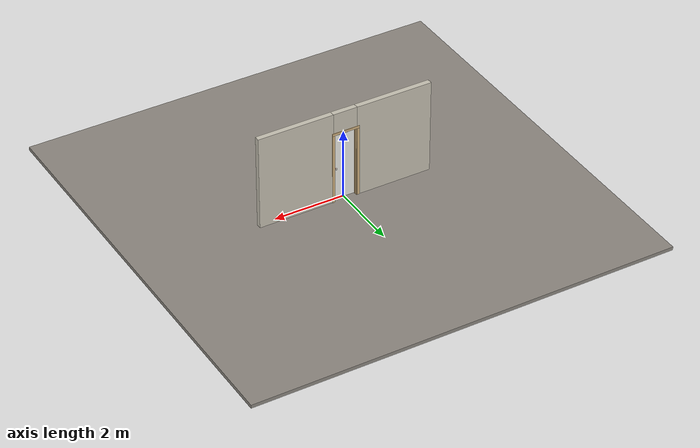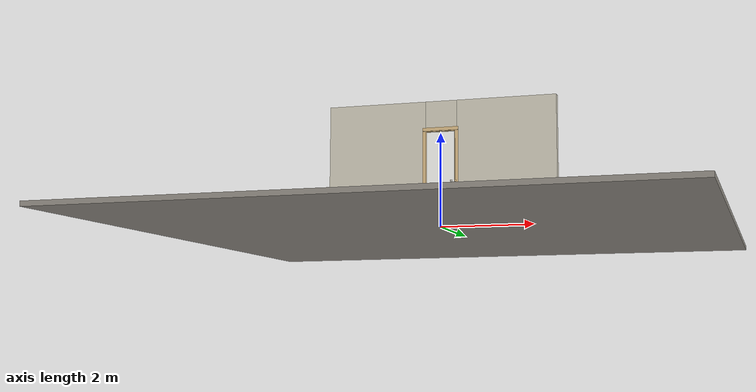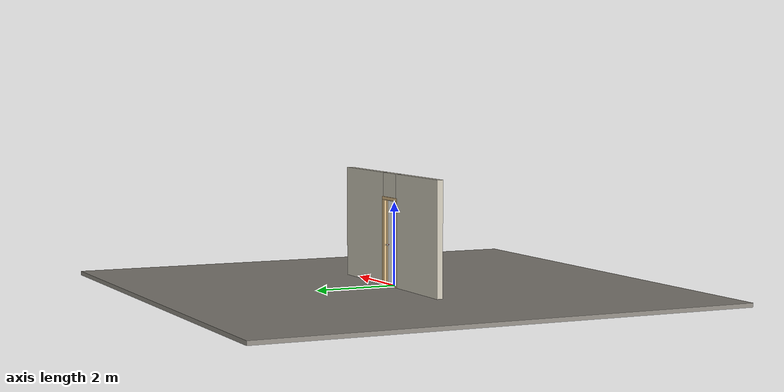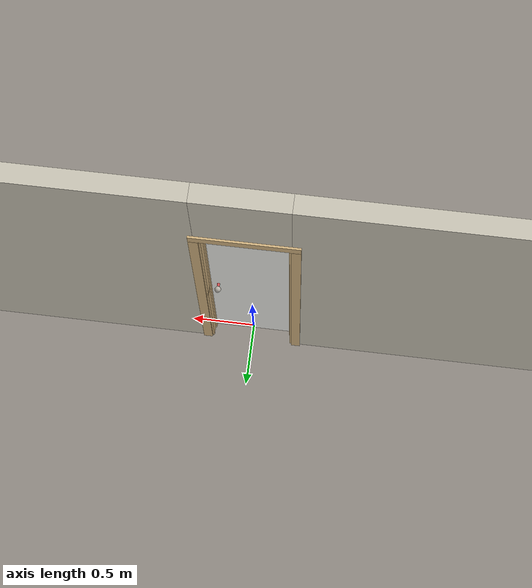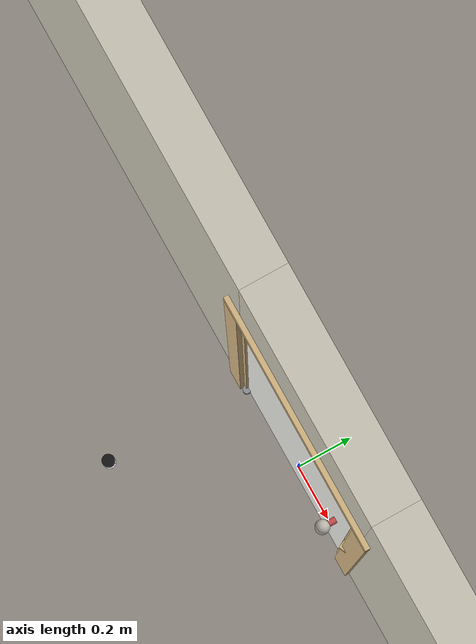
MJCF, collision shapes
<?xml version="1.0" ?>
<mujoco model="db0156_swing_single_full">
  <compiler angle="radian" meshdir="../../hardware" texturedir="../../textures" autolimits="true" inertiafromgeom="false"/>
  <option timestep="0.002" integrator="implicitfast" cone="elliptic" impratio="10" noslip_iterations="3">
    <flag multiccd="enable"/>
  </option>
  <size memory="16M"/>
  <default>
    <geom condim="4" solref="0.005 1" solimp="0.95 0.99 0.001"/>
    <joint solreflimit="0.005 1" solimplimit="0.95 0.99 0.001"/>
    <tendon solreflimit="0.005 1"/>
    <equality solref="0.002 1"/>
  </default>
  <visual>
    <headlight ambient="0.4 0.4 0.4" diffuse="0.7 0.7 0.7" specular="0.2 0.2 0.2"/>
    <quality shadowsize="4096"/>
    <map znear="0.01" zfar="60"/>
  </visual>
  <asset>
    <mesh name="hinge_7678ceaa91" file="hinge_7678ceaa91.obj"/>
    <mesh name="hinge_jamb_24fdb06e8a" file="hinge_jamb_24fdb06e8a.obj"/>
    <mesh name="knob_248d825e64" file="knob_248d825e64.obj"/>
    <mesh name="knob_d1888f6f03" file="knob_d1888f6f03.obj"/>
    <material name="mat_floor" rgba="0.55 0.53 0.5 1" specular="0.2" shininess="0.15" reflectance="0"/>
    <material name="mat_wall" rgba="0.78 0.76 0.7 1" specular="0.2" shininess="0.1" reflectance="0"/>
    <material name="mat_hinge" rgba="0.55 0.56 0.58 1" specular="0.8" shininess="0.55" reflectance="0.4"/>
    <material name="mat_leaf" rgba="0.93 0.93 0.91 1" specular="0.2" shininess="0.41" reflectance="0"/>
    <material name="mat_leaf_louver" rgba="0.79 0.79 0.773 1" specular="0.2" shininess="0.4" reflectance="0"/>
    <material name="mat_op_nickel_satin" rgba="0.72 0.7 0.66 1" specular="0.8" shininess="0.65" reflectance="0.4"/>
    <material name="mat_trim" rgba="0.85 0.66 0.3 1" specular="0.8" shininess="0.75" reflectance="0.4"/>
    <material name="mat_bolt" rgba="0.85 0.66 0.3 1" specular="0.8" shininess="0.75" reflectance="0.4"/>
    <material name="mat_frame" rgba="0.82 0.7 0.5 1" specular="0.2" shininess="0.45" reflectance="0"/>
    <material name="mat_bumper_stop" rgba="0.08 0.08 0.08 1" specular="0.2" shininess="0.1" reflectance="0"/>
    <material name="mat_stop_base" rgba="0.9 0.9 0.92 1" specular="0.8" shininess="0.9" reflectance="0.4"/>
    <texture name="skybox" type="skybox" builtin="gradient" rgb1="0.6 0.7 0.85" rgb2="0.9 0.92 0.95" width="256" height="256"/>
  </asset>
  <worldbody>
    <light name="sun" pos="1.5 -2.5 4" dir="-0.3 0.5 -0.8" directional="true" diffuse="0.8 0.8 0.8" specular="0.3 0.3 0.3" castshadow="true"/>
    <light name="fill" pos="-1.5 2.5 3" dir="0.3 -0.5 -0.7" directional="true" diffuse="0.35 0.35 0.4" castshadow="false"/>
    <camera name="robot_view" pos="0 -2.496687 1.734312" xyaxes="1 0 0 0 0.26963 0.962964" fovy="52"/>
    <camera name="far_view" pos="0 2.587687 1.734312" xyaxes="-1 0 0 0 -0.26963 0.962964" fovy="52"/>
    <camera name="iso" pos="1.932062 -2.089938 2.141063" xyaxes="0.741536 0.670913 0 -0.242917 0.268487 0.932151" fovy="46"/>
    <camera name="detail_handle" pos="0.424 -0.8665 1.245" xyaxes="0.97561 0.219512 0 -0.070934 0.315262 0.94635" fovy="38"/>
    <geom name="floor" type="box" size="6 6 0.05" pos="0 0 -0.05" material="mat_floor" group="0" contype="1" conaffinity="1" friction="0.8 0.005 0.0001" density="2400"/>
    <geom name="wall_left" type="box" size="1.086 0.0725 1.35" pos="-1.414 0.0455 1.35" material="mat_wall" group="0" contype="1" conaffinity="1" friction="0.6 0.005 0.0001" density="800"/>
    <geom name="wall_right" type="box" size="1.071 0.0725 1.35" pos="1.429 0.0455 1.35" material="mat_wall" group="0" contype="1" conaffinity="1" friction="0.6 0.005 0.0001" density="800"/>
    <geom name="wall_header" type="box" size="0.343 0.0725 0.303" pos="0.015 0.0455 2.397" material="mat_wall" group="0" contype="1" conaffinity="1" friction="0.6 0.005 0.0001" density="800"/>
    <geom name="hinge_0_jamb" type="mesh" mesh="hinge_jamb_24fdb06e8a" pos="-0.306 -0.027 0.259" material="mat_hinge" group="1" contype="0" conaffinity="0" density="7850"/>
    <geom name="hinge_1_jamb" type="mesh" mesh="hinge_jamb_24fdb06e8a" pos="-0.306 -0.027 1.0198" material="mat_hinge" group="1" contype="0" conaffinity="0" density="7850"/>
    <geom name="hinge_2_jamb" type="mesh" mesh="hinge_jamb_24fdb06e8a" pos="-0.306 -0.027 1.8506" material="mat_hinge" group="1" contype="0" conaffinity="0" density="7850"/>
    <geom name="jamb_hinge" type="box" size="0.0095 0.0725 1.0225" pos="-0.3185 0.0455 1.0225" material="mat_frame" group="0" contype="1" conaffinity="1" friction="0.6 0.005 0.0001" density="400"/>
    <geom name="strike_965_wall_n" type="box" size="0.0245 0.055075 0.0167" pos="0.3335 0.062925 0.965" material="mat_frame" group="0" contype="1" conaffinity="1" friction="0.6 0.005 0.0001" density="400"/>
    <geom name="strike_965_wall_p" type="box" size="0.0245 0.008 0.0167" pos="0.3335 -0.01585 0.965" material="mat_frame" group="0" contype="1" conaffinity="1" friction="0.6 0.005 0.0001" density="400"/>
    <geom name="strike_965_ramp" type="box" size="0.0245 0.01649 0.0167" pos="0.338136 -0.028673 0.965" quat="0.977148 0 0 0.212558" material="mat_frame" group="0" contype="1" conaffinity="1" friction="0.12 0.005 0.0001" density="400"/>
    <geom name="strike_965_back" type="box" size="0.01615 0.00785 0.0167" pos="0.34185 0 0.965" material="mat_frame" group="0" contype="1" conaffinity="1" friction="0.6 0.005 0.0001" density="400"/>
    <geom name="jamb_strike_0" type="box" size="0.0245 0.0725 0.47415" pos="0.3335 0.0455 0.47415" material="mat_frame" group="0" contype="1" conaffinity="1" friction="0.6 0.005 0.0001" density="400"/>
    <geom name="jamb_strike_1" type="box" size="0.0245 0.0725 0.53165" pos="0.3335 0.0455 1.51335" material="mat_frame" group="0" contype="1" conaffinity="1" friction="0.6 0.005 0.0001" density="400"/>
    <geom name="jamb_head" type="box" size="0.343 0.0725 0.0095" pos="0.015 0.0455 2.0545" material="mat_frame" group="0" contype="1" conaffinity="1" friction="0.6 0.005 0.0001" density="400"/>
    <geom name="head_stud" type="box" size="0.343 0.0725 0.015" pos="0.015 0.0455 2.079" material="mat_wall" group="0" contype="1" conaffinity="1" friction="0.6 0.005 0.0001" density="500"/>
    <geom name="stop_hinge" type="box" size="0.0055 0.016 1.0225" pos="-0.3035 0.0365 1.0225" material="mat_frame" group="0" contype="1" conaffinity="1" friction="0.6 0.005 0.0001" density="400"/>
    <geom name="stop_strike" type="box" size="0.0055 0.016 1.0225" pos="0.3035 0.0365 1.0225" material="mat_frame" group="0" contype="1" conaffinity="1" friction="0.6 0.005 0.0001" density="400"/>
    <geom name="stop_head" type="box" size="0.309 0.016 0.0055" pos="0 0.0365 2.0395" material="mat_frame" group="0" contype="1" conaffinity="1" friction="0.6 0.005 0.0001" density="400"/>
    <geom name="casing_l_n" type="box" size="0.035 0.008 1.032" pos="-0.358 -0.035 1.0225" material="mat_frame" group="2" contype="0" conaffinity="0" density="400"/>
    <geom name="casing_r_n" type="box" size="0.035 0.008 1.032" pos="0.358 -0.035 1.0225" material="mat_frame" group="2" contype="0" conaffinity="0" density="400"/>
    <geom name="casing_h_n" type="box" size="0.393 0.008 0.035" pos="0 -0.035 2.094" material="mat_frame" group="2" contype="0" conaffinity="0" density="400"/>
    <geom name="casing_l_p" type="box" size="0.035 0.008 1.032" pos="-0.358 0.126 1.0225" material="mat_frame" group="2" contype="0" conaffinity="0" density="400"/>
    <geom name="casing_r_p" type="box" size="0.035 0.008 1.032" pos="0.358 0.126 1.0225" material="mat_frame" group="2" contype="0" conaffinity="0" density="400"/>
    <geom name="casing_h_p" type="box" size="0.393 0.008 0.035" pos="0 0.126 2.094" material="mat_frame" group="2" contype="0" conaffinity="0" density="400"/>
    <geom name="door_stop_base" type="cylinder" size="0.022 0.003" pos="-0.322 -0.5455 0.003" material="mat_stop_base" group="0" contype="1" conaffinity="1" friction="0.6 0.005 0.0001" density="7850"/>
    <geom name="door_stop_post" type="cylinder" size="0.012 0.0245" pos="-0.322 -0.5455 0.0305" material="mat_stop_base" group="0" contype="1" conaffinity="1" friction="0.6 0.005 0.0001" density="7850"/>
    <geom name="door_stop_bumper" type="cylinder" size="0.022 0.02" pos="-0.322 -0.5455 0.075" material="mat_bumper_stop" group="0" contype="1" conaffinity="1" friction="0.6 0.005 0.0001" density="1100"/>
    <site name="approach_point" pos="0 -1.5 0" quat="1 0 0 0" size="0.05" rgba="0.2 0.9 0.2 0.5" group="4"/>
    <site name="goal_point" pos="0 1.5 0" quat="1 0 0 0" size="0.05" rgba="0.2 0.9 0.2 0.5" group="4"/>
    <site name="door_plane_center" pos="0 0 1.0225" quat="1 0 0 0" size="0.02" rgba="0.2 0.9 0.2 0.5" group="4"/>
    <body name="leaf_riser" pos="-0.309 0 0">
      <inertial pos="0.003 -0.027 0.055" mass="0.174012" quat="0.707107 0 0.707107 0" diaginertia="0.000017053 0.00002732 0.00002732"/>
      <joint name="leaf_rise" type="slide" axis="0 0 1" limited="true" range="0 0.0176" damping="1" armature="0.5"/>
      <geom name="leaf_riser_marker" type="cylinder" size="0.014 0.018" pos="0.003 -0.027 0.055" material="mat_hinge" group="1" contype="0" conaffinity="0" density="7850"/>
      <body name="leaf" pos="0 0 0">
        <inertial pos="0.303195 -0.00029 1.020175" mass="37.339069" quat="-0.499418 0.500773 -0.499217 -0.500591" diaginertia="1.200396736 12.767262401 13.957282661"/>
        <joint name="leaf_hinge" type="hinge" axis="0 0 -1" pos="0.003 -0.027 0" limited="true" range="0 1.570796" damping="0.100811" frictionloss="6.851835" armature="0.02"/>
        <geom name="leaf_slab" type="box" size="0.305 0.02 1.0108" pos="0.308 0 1.0198" material="mat_leaf" group="0" contype="1" conaffinity="1" friction="0.4 0.005 0.0001" density="1"/>
        <geom name="leaf_louver_0" type="box" size="0.215 0.002 0.026846" pos="0.308 0 1.085799" quat="0.953717 0.300706 0 0" material="mat_leaf_louver" group="1" contype="0" conaffinity="0" density="1"/>
        <geom name="leaf_louver_1" type="box" size="0.215 0.002 0.026846" pos="0.308 0 1.136934" quat="0.953717 0.300706 0 0" material="mat_leaf_louver" group="1" contype="0" conaffinity="0" density="1"/>
        <geom name="leaf_louver_2" type="box" size="0.215 0.002 0.026846" pos="0.308 0 1.188068" quat="0.953717 0.300706 0 0" material="mat_leaf_louver" group="1" contype="0" conaffinity="0" density="1"/>
        <geom name="leaf_louver_3" type="box" size="0.215 0.002 0.026846" pos="0.308 0 1.239203" quat="0.953717 0.300706 0 0" material="mat_leaf_louver" group="1" contype="0" conaffinity="0" density="1"/>
        <geom name="leaf_louver_4" type="box" size="0.215 0.002 0.026846" pos="0.308 0 1.290338" quat="0.953717 0.300706 0 0" material="mat_leaf_louver" group="1" contype="0" conaffinity="0" density="1"/>
        <geom name="leaf_louver_5" type="box" size="0.215 0.002 0.026846" pos="0.308 0 1.341472" quat="0.953717 0.300706 0 0" material="mat_leaf_louver" group="1" contype="0" conaffinity="0" density="1"/>
        <geom name="leaf_louver_6" type="box" size="0.215 0.002 0.026846" pos="0.308 0 1.392607" quat="0.953717 0.300706 0 0" material="mat_leaf_louver" group="1" contype="0" conaffinity="0" density="1"/>
        <geom name="leaf_louver_7" type="box" size="0.215 0.002 0.026846" pos="0.308 0 1.443741" quat="0.953717 0.300706 0 0" material="mat_leaf_louver" group="1" contype="0" conaffinity="0" density="1"/>
        <geom name="leaf_louver_8" type="box" size="0.215 0.002 0.026846" pos="0.308 0 1.494876" quat="0.953717 0.300706 0 0" material="mat_leaf_louver" group="1" contype="0" conaffinity="0" density="1"/>
        <geom name="leaf_louver_9" type="box" size="0.215 0.002 0.026846" pos="0.308 0 1.546011" quat="0.953717 0.300706 0 0" material="mat_leaf_louver" group="1" contype="0" conaffinity="0" density="1"/>
        <geom name="leaf_louver_10" type="box" size="0.215 0.002 0.026846" pos="0.308 0 1.597145" quat="0.953717 0.300706 0 0" material="mat_leaf_louver" group="1" contype="0" conaffinity="0" density="1"/>
        <geom name="leaf_louver_11" type="box" size="0.215 0.002 0.026846" pos="0.308 0 1.64828" quat="0.953717 0.300706 0 0" material="mat_leaf_louver" group="1" contype="0" conaffinity="0" density="1"/>
        <geom name="leaf_louver_12" type="box" size="0.215 0.002 0.026846" pos="0.308 0 1.699414" quat="0.953717 0.300706 0 0" material="mat_leaf_louver" group="1" contype="0" conaffinity="0" density="1"/>
        <geom name="leaf_louver_13" type="box" size="0.215 0.002 0.026846" pos="0.308 0 1.750549" quat="0.953717 0.300706 0 0" material="mat_leaf_louver" group="1" contype="0" conaffinity="0" density="1"/>
        <geom name="leaf_louver_14" type="box" size="0.215 0.002 0.026846" pos="0.308 0 1.801684" quat="0.953717 0.300706 0 0" material="mat_leaf_louver" group="1" contype="0" conaffinity="0" density="1"/>
        <geom name="leaf_louver_15" type="box" size="0.215 0.002 0.026846" pos="0.308 0 1.852818" quat="0.953717 0.300706 0 0" material="mat_leaf_louver" group="1" contype="0" conaffinity="0" density="1"/>
        <geom name="leaf_louver_16" type="box" size="0.215 0.002 0.026846" pos="0.308 0 1.903953" quat="0.953717 0.300706 0 0" material="mat_leaf_louver" group="1" contype="0" conaffinity="0" density="1"/>
        <geom name="hinge_0" type="mesh" mesh="hinge_7678ceaa91" pos="0.003 -0.027 0.259" material="mat_hinge" group="1" contype="0" conaffinity="0" density="7850"/>
        <geom name="hinge_1" type="mesh" mesh="hinge_7678ceaa91" pos="0.003 -0.027 1.0198" material="mat_hinge" group="1" contype="0" conaffinity="0" density="7850"/>
        <geom name="hinge_2" type="mesh" mesh="hinge_7678ceaa91" pos="0.003 -0.027 1.8506" material="mat_hinge" group="1" contype="0" conaffinity="0" density="7850"/>
        <geom name="leaf_latch_bolt_faceplate" type="box" size="0.0006 0.01235 0.0267" pos="0.6124 0 0.965" material="mat_bolt" group="1" contype="0" conaffinity="0" density="8500"/>
        <site name="leaf_edge_mid" pos="0.613 0 1.0108" quat="1 0 0 0" size="0.02" rgba="0.2 0.9 0.2 0.5" group="4"/>
        <body name="leaf_handle" pos="0.553 0 0.965">
          <inertial pos="0 -0.000221 0" mass="1.1511" quat="0.5 0.5 0.5 0.5" diaginertia="0.000312482 0.004034625 0.004034625"/>
          <joint name="leaf_handle_hinge" type="hinge" axis="0 -1 0" limited="true" range="0 0.87" damping="0.143614" frictionloss="0.038" stiffness="0.5" springref="-0.5" armature="0.01"/>
          <geom name="leaf_handle_spindle" type="cylinder" size="0.006 0.028" pos="0 0 0" quat="0.707107 -0.707107 0 0" material="mat_op_nickel_satin" group="1" contype="0" conaffinity="0" density="7850"/>
          <geom name="leaf_handle_knob_n" type="mesh" mesh="knob_248d825e64" pos="0 -0.02 0" quat="0.707107 0.707107 0 0" material="mat_op_nickel_satin" group="1" contype="0" conaffinity="0" density="3000"/>
          <geom name="leaf_handle_knob_col_n" type="sphere" size="0.0243" pos="0 -0.0665 0" material="mat_op_nickel_satin" group="0" contype="1" conaffinity="1" friction="0.9 0.01 0.0001" density="3000"/>
          <geom name="leaf_handle_knob_neck_n" type="cylinder" size="0.011 0.012" pos="0 -0.032 0" quat="0.707107 -0.707107 0 0" material="mat_op_nickel_satin" group="3" contype="1" conaffinity="1" rgba="0.8 0.3 0.3 0.25" friction="0.6 0.005 0.0001" density="3000"/>
          <geom name="leaf_handle_knob_p" type="mesh" mesh="knob_d1888f6f03" pos="0 0.02 0" quat="-0.707107 0.707107 0 0" material="mat_op_nickel_satin" group="1" contype="0" conaffinity="0" density="3000"/>
          <geom name="leaf_handle_knob_col_p" type="sphere" size="0.0243" pos="0 0.0665 0" material="mat_op_nickel_satin" group="0" contype="1" conaffinity="1" friction="0.9 0.01 0.0001" density="3000"/>
          <geom name="leaf_handle_knob_neck_p" type="cylinder" size="0.011 0.012" pos="0 0.032 0" quat="0.707107 -0.707107 0 0" material="mat_op_nickel_satin" group="3" contype="1" conaffinity="1" rgba="0.8 0.3 0.3 0.25" friction="0.6 0.005 0.0001" density="3000"/>
          <site name="leaf_handle_grip_n" pos="0 -0.0665 0" quat="1 0 0 0" size="0.012" rgba="0.2 0.9 0.2 0.5" group="4"/>
          <site name="leaf_handle_grip_p" pos="0 0.0665 0" quat="1 0 0 0" size="0.012" rgba="0.2 0.9 0.2 0.5" group="4"/>
        </body>
        <body name="leaf_latch_bolt" pos="0.613 0 0.965">
          <inertial pos="-0.00865 0 0" mass="0.041419" quat="0.92388 -0.382683 0 0" diaginertia="0.000000798 0.000005598 0.000005598"/>
          <joint name="leaf_latch_bolt_slide" type="slide" axis="-1 0 0" limited="true" range="0 0.0127" damping="2" frictionloss="0.3" stiffness="300" springref="-0.008333" armature="0.1"/>
          <geom name="leaf_latch_bolt_capsule" type="capsule" size="0.00635 0.015" pos="-0.00865 0 0" quat="0.707107 0 0.707107 0" material="mat_bolt" group="0" contype="1" conaffinity="1" friction="0.2 0.005 0.0001" density="8500"/>
        </body>
      </body>
    </body>
  </worldbody>
  <tendon>
    <fixed name="leaf_latch_bolt_coupling" limited="true" range="0 10">
      <joint joint="leaf_latch_bolt_slide" coef="1"/>
      <joint joint="leaf_handle_hinge" coef="-0.015679"/>
    </fixed>
  </tendon>
  <equality>
    <joint name="leaf_rise_couple" joint1="leaf_rise" joint2="leaf_hinge" polycoef="0 0.005093 0 0 0" active="true"/>
  </equality>
  <sensor>
    <jointpos name="leaf_hinge_pos" joint="leaf_hinge"/>
    <jointvel name="leaf_hinge_vel" joint="leaf_hinge"/>
    <jointpos name="leaf_handle_hinge_pos" joint="leaf_handle_hinge"/>
    <jointvel name="leaf_handle_hinge_vel" joint="leaf_handle_hinge"/>
    <jointpos name="leaf_latch_bolt_slide_pos" joint="leaf_latch_bolt_slide"/>
    <jointvel name="leaf_latch_bolt_slide_vel" joint="leaf_latch_bolt_slide"/>
  </sensor>
</mujoco>
